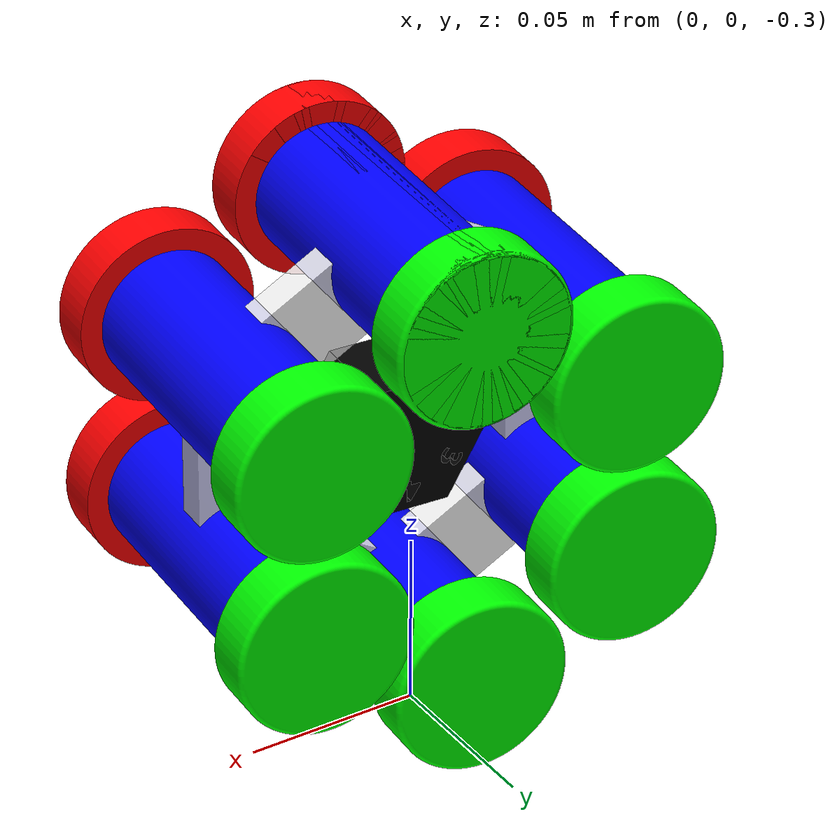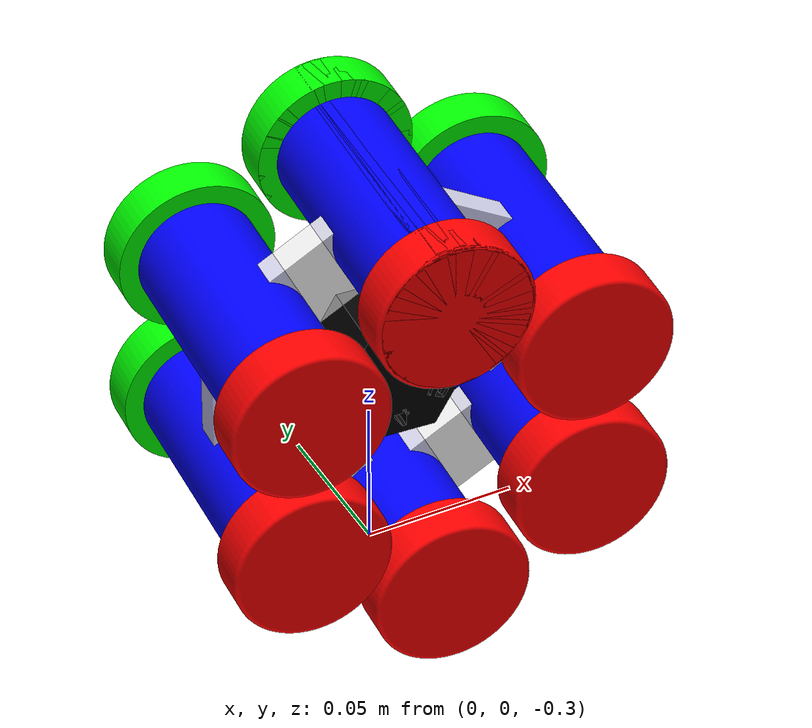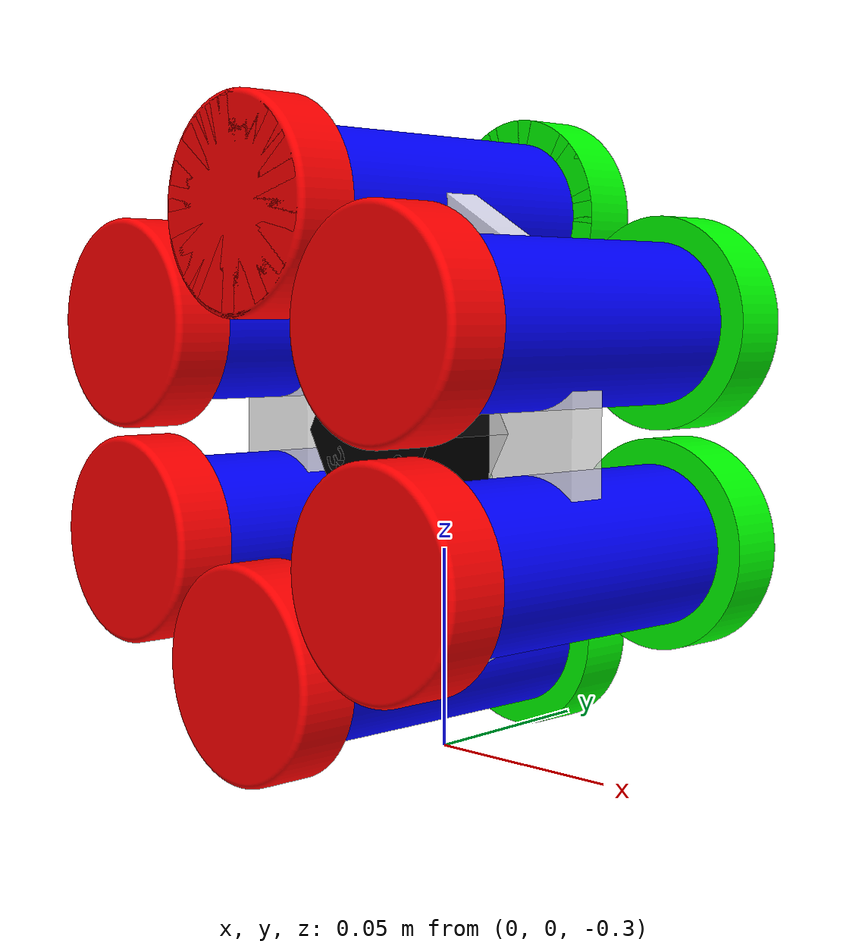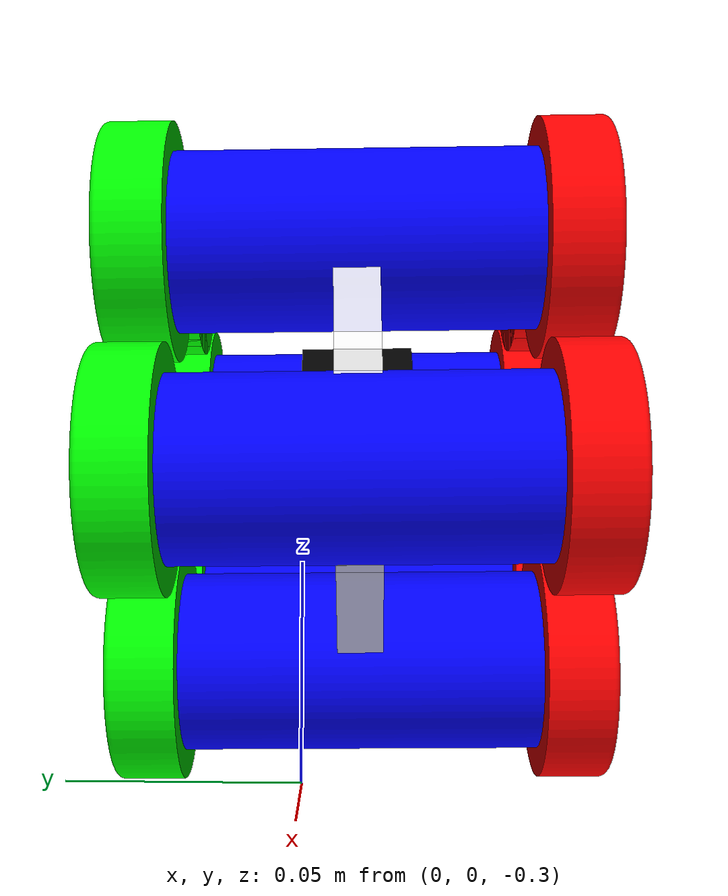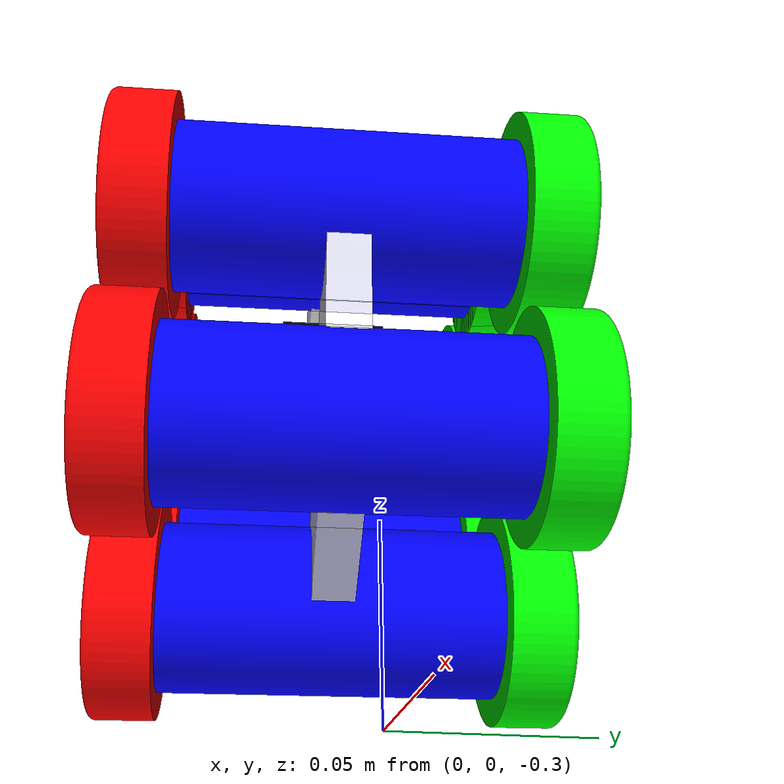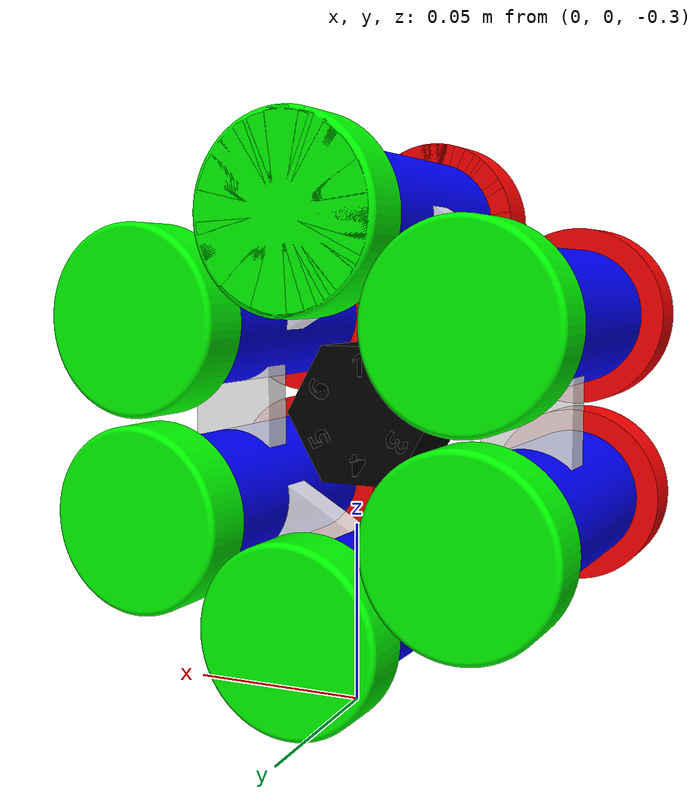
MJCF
<?xml version="1.0" ?>
<!-- Generated using onshape-to-robot -->
<!-- Onshape https://cad.onshape.com/documents/1211bac3cb73c606e0df4462/w/b4b802ed1facbeb12b844dd4/e/452889f0b3bd3a04c0a0f503 -->
<mujoco model="roller">
  <compiler angle="radian" meshdir="assets" autolimits="true"/>
  <default>
    <default class="roller">
      <joint frictionloss="0.1" armature="0.005"/>
      <position kp="50" dampratio="1"/>
      <default class="visual">
        <geom type="mesh" contype="0" conaffinity="0" group="2"/>
      </default>
      <default class="collision">
        <geom group="3"/>
      </default>
    </default>
  </default>
  <worldbody>
    <!-- Link control -->
    <body name="control" pos="0 0 -0.22" euler="0 0.0 1.5" childclass="roller">
      <freejoint name="control_freejoint"/>
      <inertial pos="-0.0127 0.0228081 0.0395434" mass="0.0211207" fullinertia="1.05373e-05 3.32284e-06 7.5338e-06 -4.41757e-22 2.23302e-22 3.6468e-06"/>
      <!-- Part control -->

      <site group="3" name="control" pos="0 0 0" quat="1 0 0 0"/>

      <geom type="mesh" class="visual" pos="-0.0127 -5.50107e-05 -5.66234e-05" quat="1 0 0 0" mesh="control" material="control_material"/>
      <geom type="mesh" class="collision" pos="-0.0127 -5.50107e-05 -5.66234e-05" quat="1 0 0 0" mesh="control" material="control_material"/>
      <!-- Part suspension_joint -->
      <geom type="mesh" class="visual" pos="-0.0127 -5.50107e-05 -5.66234e-05" quat="1 -0 1.11022e-16 -0" mesh="suspension_joint" material="suspension_joint_material"/>
      <geom type="mesh" class="collision" pos="-0.0127 -5.50107e-05 -5.66234e-05" quat="1 -0 1.11022e-16 -0" mesh="suspension_joint" material="suspension_joint_material"/>
      <!-- Link center -->
      <body name="center" pos="-0.0127 -5.50107e-05 0.0527434" quat="0.5 0.5 0.5 0.5">
        <!-- Joint from control to center -->
        <!-- Joint is "fixed", skipping it -->
        <inertial pos="-3.54563e-19 6.93889e-18 1.80493e-18" mass="0.10645" fullinertia="6.13698e-05 6.13698e-05 1.97233e-05 4.08805e-19 2.94105e-19 -2.19536e-19"/>
        <!-- Part center -->
        <geom type="mesh" class="visual" pos="-3.52976e-16 -0.0528 1.9082e-16" quat="0.5 -0.5 -0.5 -0.5" mesh="center" material="center_material"/>
        <geom type="mesh" class="collision" pos="-3.52976e-16 -0.0528 1.9082e-16" quat="0.5 -0.5 -0.5 -0.5" mesh="center" material="center_material"/>
        <!-- Frame roller1 -->
        <site group="3" name="roller1" pos="9.08019e-19 0 1.73472e-18" quat="0.5 -0.5 -0.5 -0.5"/>
        <!-- Link l_wheel -->
        <body name="l_wheel" pos="-5.70412e-16 6.93889e-18 -0.0381" quat="0.707107 5.26922e-15 5.88418e-15 0.707107">
          <!-- Joint from center to l_wheel -->
          <joint axis="0 0 1" name="L1" type="hinge"/>
          <inertial pos="-3.31489e-19 0 -0.00723207" mass="0.0823695" fullinertia="1.46894e-05 1.46894e-05 2.65054e-05 0 0 4.01044e-38"/>
          <!-- Part l_wheel -->
          <geom type="mesh" class="visual" pos="0 -0.0528 0.0381" quat="0.5 -0.5 -0.5 -0.5" mesh="l_wheel" material="l_wheel_material"/>
          <geom type="mesh" class="collision" pos="0 -0.0528 0.0381" quat="0.5 -0.5 -0.5 -0.5" mesh="l_wheel" material="l_wheel_material"/>
        </body>
        <!-- Link r_wheel -->
        <body name="r_wheel" pos="5.68075e-16 0 0.0381" quat="1 -9.55844e-16 3.83027e-15 -1.72085e-15">
          <!-- Joint from center to r_wheel -->
          <joint axis="0 0 1" name="R1" type="hinge"/>
          <inertial pos="0 -1.38778e-17 0.00723207" mass="0.0823695" fullinertia="1.46894e-05 1.46894e-05 2.65054e-05 -9.56684e-20 -2.19041e-19 5.24686e-20"/>
          <!-- Part r_wheel -->
          <geom type="mesh" class="visual" pos="0.0358672 -0.0387477 -0.0381" quat="0.64794 -0.28315 -0.64794 -0.28315" mesh="r_wheel" material="r_wheel_material"/>
          <geom type="mesh" class="collision" pos="0.0358672 -0.0387477 -0.0381" quat="0.64794 -0.28315 -0.64794 -0.28315" mesh="r_wheel" material="r_wheel_material"/>
        </body>
      </body>
      <!-- Link center_2 -->
      <body name="center_2" pos="-0.0127 0.0456711 0.0263434" quat="0.5 0.5 0.5 0.5">
        <!-- Joint from control to center_2 -->
        <!-- Joint is "fixed", skipping it -->
        <inertial pos="6.93889e-18 6.93889e-18 3.84346e-34" mass="0.10645" fullinertia="6.13698e-05 6.13698e-05 1.97233e-05 0 1.4377e-37 2.23364e-37"/>
        <!-- Part center_2 -->
        <geom type="mesh" class="visual" pos="-0.0457261 -0.0264 0" quat="0.183013 -0.683013 -0.183013 -0.683013" mesh="center" material="center_material"/>
        <geom type="mesh" class="collision" pos="-0.0457261 -0.0264 0" quat="0.183013 -0.683013 -0.183013 -0.683013" mesh="center" material="center_material"/>
        <!-- Frame roller6 -->
        <site group="3" name="roller6" pos="0 -3.46945e-18 0" quat="0.183013 -0.683013 -0.183013 -0.683013"/>
        <!-- Link l_wheel_2 -->
        <body name="l_wheel_2" pos="6.93889e-18 1.04083e-17 -0.0381" quat="0.707107 0 1.11022e-16 0.707107">
          <!-- Joint from center_2 to l_wheel_2 -->
          <joint axis="0 0 1" name="L2" type="hinge"/>
          <inertial pos="-3.31489e-19 0 -0.00723207" mass="0.0823695" fullinertia="1.46894e-05 1.46894e-05 2.65054e-05 0 0 1.23917e-53"/>
          <!-- Part l_wheel_2 -->
          <geom type="mesh" class="visual" pos="0 -0.0528 0.0381" quat="0.5 -0.5 -0.5 -0.5" mesh="l_wheel" material="l_wheel_material"/>
          <geom type="mesh" class="collision" pos="0 -0.0528 0.0381" quat="0.5 -0.5 -0.5 -0.5" mesh="l_wheel" material="l_wheel_material"/>
        </body>
        <!-- Link r_wheel_2 -->
        <body name="r_wheel_2" pos="-6.93889e-18 0 0.0381" quat="0.866025 0 -2.22045e-16 -0.5">
          <!-- Joint from center_2 to r_wheel_2 -->
          <joint axis="0 0 1" name="R2" type="hinge"/>
          <inertial pos="1.14925e-17 1.38778e-17 0.00723207" mass="0.0823695" fullinertia="1.46894e-05 1.46894e-05 2.65054e-05 -1.36688e-22 -2.64828e-22 9.8835e-22"/>
          <!-- Part r_wheel_2 -->
          <geom type="mesh" class="visual" pos="-0.00158328 0.0527763 -0.0381" quat="0.492446 0.507441 -0.492446 0.507441" mesh="r_wheel" material="r_wheel_material"/>
          <geom type="mesh" class="collision" pos="-0.00158328 0.0527763 -0.0381" quat="0.492446 0.507441 -0.492446 0.507441" mesh="r_wheel" material="r_wheel_material"/>
        </body>
        <!-- Link suspension_joint -->
        <body name="suspension_joint" pos="2.08167e-17 -6.93889e-18 0" quat="3.78603e-33 0.866025 -0.5 -3.66721e-34">
          <!-- Joint from center_2 to suspension_joint -->
          <!-- Joint is "fixed", skipping it -->
          <inertial pos="0.0228631 0.0132 2.99947e-18" mass="0.0211207" fullinertia="3.32284e-06 7.5338e-06 1.05373e-05 -3.6468e-06 -4.2143e-38 4.78606e-38"/>
          <!-- Part suspension_joint_2 -->
          <geom type="mesh" class="visual" pos="5.91907e-18 0.0528 3.46945e-18" quat="0.5 0.5 0.5 -0.5" mesh="suspension_joint" material="suspension_joint_material"/>
          <geom type="mesh" class="collision" pos="5.91907e-18 0.0528 3.46945e-18" quat="0.5 0.5 0.5 -0.5" mesh="suspension_joint" material="suspension_joint_material"/>
          <!-- Link center_3 -->
          <body name="center_3" pos="0.0457261 0.0264 0" quat="0.866025 0 9.22709e-17 0.5">
            <!-- Joint from suspension_joint to center_3 -->
            <!-- Joint is "fixed", skipping it -->
            <inertial pos="-4.01038e-18 -6.93889e-18 2.60324e-33" mass="0.10645" fullinertia="6.13698e-05 6.13698e-05 1.97233e-05 -1.82565e-21 -7.16404e-36 -3.02577e-36"/>
            <!-- Part center_3 -->
            <geom type="mesh" class="visual" pos="-5.19062e-18 0.0528 0" quat="0.5 0.5 0.5 -0.5" mesh="center" material="center_material"/>
            <geom type="mesh" class="collision" pos="-5.19062e-18 0.0528 0" quat="0.5 0.5 0.5 -0.5" mesh="center" material="center_material"/>
            <!-- Frame roller5 -->
            <site group="3" name="roller5" pos="1.3417e-18 2.08167e-17 1.73472e-18" quat="0.5 0.5 0.5 -0.5"/>
            <!-- Link l_wheel_3 -->
            <body name="l_wheel_3" pos="6.23958e-17 -1.38778e-17 0.0381" quat="4.7547e-17 -0.258819 -0.965926 7.58201e-17">
              <!-- Joint from center_3 to l_wheel_3 -->
              <joint axis="0 0 1" name="L3" type="hinge"/>
              <inertial pos="3.13796e-18 6.93889e-18 -0.00723207" mass="0.0823695" fullinertia="1.46894e-05 1.46894e-05 2.65054e-05 0 0 -1.57949e-53"/>
              <!-- Part l_wheel_3 -->
              <geom type="mesh" class="visual" pos="3.46945e-18 -0.0528 0.0381" quat="0.5 -0.5 -0.5 -0.5" mesh="l_wheel" material="l_wheel_material"/>
              <geom type="mesh" class="collision" pos="3.46945e-18 -0.0528 0.0381" quat="0.5 -0.5 -0.5 -0.5" mesh="l_wheel" material="l_wheel_material"/>
            </body>
            <!-- Link r_wheel_3 -->
            <body name="r_wheel_3" pos="-4.01155e-18 -6.93889e-18 -0.0381" quat="0 1 0 0">
              <!-- Joint from center_3 to r_wheel_3 -->
              <joint axis="0 0 1" name="R3" type="hinge"/>
              <inertial pos="-2.77556e-17 -4.16334e-17 0.00723207" mass="0.0823695" fullinertia="1.46894e-05 1.46894e-05 2.65054e-05 1.15046e-21 -5.64395e-20 -3.17499e-20"/>
              <!-- Part r_wheel_3 -->
              <geom type="mesh" class="visual" pos="-0.0264 0.0457261 -0.0381" quat="0.353553 0.612372 -0.353553 0.612372" mesh="r_wheel" material="r_wheel_material"/>
              <geom type="mesh" class="collision" pos="-0.0264 0.0457261 -0.0381" quat="0.353553 0.612372 -0.353553 0.612372" mesh="r_wheel" material="r_wheel_material"/>
            </body>
            <!-- Link suspension_joint_2 -->
            <body name="suspension_joint_2" pos="-6.51877e-18 -6.93889e-18 1.73472e-18" quat="1 -3.9318e-16 5.55112e-16 -2.77556e-16">
              <!-- Joint from center_3 to suspension_joint_2 -->
              <!-- Joint is "fixed", skipping it -->
              <inertial pos="0.0228631 0.0132 2.99947e-18" mass="0.0211207" fullinertia="3.32284e-06 7.5338e-06 1.05373e-05 -3.6468e-06 1.40876e-36 -4.09366e-36"/>
              <!-- Part suspension_joint_3 -->
              <geom type="mesh" class="visual" pos="-1.16552e-18 0.0528 3.46945e-18" quat="0.5 0.5 0.5 -0.5" mesh="suspension_joint" material="suspension_joint_material"/>
              <geom type="mesh" class="collision" pos="-1.16552e-18 0.0528 3.46945e-18" quat="0.5 0.5 0.5 -0.5" mesh="suspension_joint" material="suspension_joint_material"/>
              <!-- Link center_4 -->
              <body name="center_4" pos="0.0457261 0.0264 0" quat="0.866025 0 1.2819e-30 0.5">
                <!-- Joint from suspension_joint_2 to center_4 -->
                <!-- Joint is "fixed", skipping it -->
                <inertial pos="-2.93913e-19 0 2.27951e-33" mass="0.10645" fullinertia="6.13698e-05 6.13698e-05 1.97233e-05 9.37238e-50 1.28857e-36 -1.79799e-36"/>
                <!-- Part center_4 -->
                <geom type="mesh" class="visual" pos="1.73472e-18 0.0528 0" quat="0.5 0.5 0.5 -0.5" mesh="center" material="center_material"/>
                <geom type="mesh" class="collision" pos="1.73472e-18 0.0528 0" quat="0.5 0.5 0.5 -0.5" mesh="center" material="center_material"/>
                <!-- Frame roller4 -->
                <site group="3" name="roller4" pos="2.8955e-17 6.93889e-17 3.46945e-18" quat="0.5 0.5 0.5 -0.5"/>
                <!-- Link l_wheel_4 -->
                <body name="l_wheel_4" pos="6.2965e-17 8.32667e-17 0.0381" quat="7.08568e-16 0.707107 0.707107 2.05588e-16">
                  <!-- Joint from center_4 to l_wheel_4 -->
                  <joint axis="0 0 1" name="L4" type="hinge"/>
                  <inertial pos="6.6074e-18 0 -0.00723207" mass="0.0823695" fullinertia="1.46894e-05 1.46894e-05 2.65054e-05 0 0 1.23917e-53"/>
                  <!-- Part l_wheel_4 -->
                  <geom type="mesh" class="visual" pos="6.93889e-18 -0.0528 0.0381" quat="0.5 -0.5 -0.5 -0.5" mesh="l_wheel" material="l_wheel_material"/>
                  <geom type="mesh" class="collision" pos="6.93889e-18 -0.0528 0.0381" quat="0.5 -0.5 -0.5 -0.5" mesh="l_wheel" material="l_wheel_material"/>
                </body>
                <!-- Link r_wheel_4 -->
                <body name="r_wheel_4" pos="6.77626e-21 0 -0.0381" quat="0 1 0 0">
                  <!-- Joint from center_4 to r_wheel_4 -->
                  <joint axis="0 0 1" name="R4" type="hinge"/>
                  <inertial pos="4.51028e-17 -9.02056e-17 0.00723207" mass="0.0823695" fullinertia="1.46894e-05 1.46894e-05 2.65054e-05 3.02467e-22 1.52759e-20 8.40499e-21"/>
                  <!-- Part r_wheel_4 -->
                  <geom type="mesh" class="visual" pos="0.005362 -0.052527 -0.0381" quat="0.524774 -0.473932 -0.524774 -0.473932" mesh="r_wheel" material="r_wheel_material"/>
                  <geom type="mesh" class="collision" pos="0.005362 -0.052527 -0.0381" quat="0.524774 -0.473932 -0.524774 -0.473932" mesh="r_wheel" material="r_wheel_material"/>
                </body>
                <!-- Link suspension_joint_3 -->
                <body name="suspension_joint_3" pos="3.46945e-18 -2.56739e-16 -1.73472e-18" quat="1 -0 1.38317e-16 -2.52077e-18">
                  <!-- Joint from center_4 to suspension_joint_3 -->
                  <!-- Joint is "fixed", skipping it -->
                  <inertial pos="0.0228631 0.0132 2.99947e-18" mass="0.0211207" fullinertia="3.32284e-06 7.5338e-06 1.05373e-05 -3.6468e-06 8.36971e-37 -6.69683e-38"/>
                  <!-- Part suspension_joint_4 -->
                  <geom type="mesh" class="visual" pos="1.73472e-18 0.0528 3.46945e-18" quat="0.5 0.5 0.5 -0.5" mesh="suspension_joint" material="suspension_joint_material"/>
                  <geom type="mesh" class="collision" pos="1.73472e-18 0.0528 3.46945e-18" quat="0.5 0.5 0.5 -0.5" mesh="suspension_joint" material="suspension_joint_material"/>
                  <!-- Link center_5 -->
                  <body name="center_5" pos="0.0457261 0.0264 -1.73472e-18" quat="0.866025 -0 2.08817e-16 0.5">
                    <!-- Joint from suspension_joint_3 to center_5 -->
                    <!-- Joint is "fixed", skipping it -->
                    <inertial pos="-8.25437e-18 0 8.97981e-33" mass="0.10645" fullinertia="6.13698e-05 6.13698e-05 1.97233e-05 -1.58106e-21 5.2312e-36 -1.1479e-35"/>
                    <!-- Part center_5 -->
                    <geom type="mesh" class="visual" pos="-5.55315e-18 0.0528 0" quat="0.5 0.5 0.5 -0.5" mesh="center" material="center_material"/>
                    <geom type="mesh" class="collision" pos="-5.55315e-18 0.0528 0" quat="0.5 0.5 0.5 -0.5" mesh="center" material="center_material"/>
                    <!-- Frame roller3 -->
                    <site group="3" name="roller3" pos="2.88303e-16 1.59595e-16 5.20417e-18" quat="0.5 0.5 0.5 -0.5"/>
                    <!-- Link l_wheel_5 -->
                    <body name="l_wheel_5" pos="3.38271e-16 1.11022e-16 0.0381" quat="7.85046e-16 -0.965926 -0.258819 4.71028e-16">
                      <!-- Joint from center_5 to l_wheel_5 -->
                      <joint axis="0 0 1" name="L5" type="hinge"/>
                      <inertial pos="3.13796e-18 -6.93889e-18 -0.00723207" mass="0.0823695" fullinertia="1.46894e-05 1.46894e-05 2.65054e-05 6.39259e-38 5.61758e-37 4.34316e-37"/>
                      <!-- Part l_wheel_5 -->
                      <geom type="mesh" class="visual" pos="3.46945e-18 -0.0528 0.0381" quat="0.5 -0.5 -0.5 -0.5" mesh="l_wheel" material="l_wheel_material"/>
                      <geom type="mesh" class="collision" pos="3.46945e-18 -0.0528 0.0381" quat="0.5 -0.5 -0.5 -0.5" mesh="l_wheel" material="l_wheel_material"/>
                    </body>
                    <!-- Link r_wheel_5 -->
                    <body name="r_wheel_5" pos="-7.32853e-18 0 -0.0381" quat="0 1 0 0">
                      <!-- Joint from center_5 to r_wheel_5 -->
                      <joint axis="0 0 1" name="R5" type="hinge"/>
                      <inertial pos="2.18575e-16 -2.28983e-16 0.00723207" mass="0.0823695" fullinertia="1.46894e-05 1.46894e-05 2.65054e-05 2.03659e-21 -1.55537e-20 -1.50391e-20"/>
                      <!-- Part r_wheel_5 -->
                      <geom type="mesh" class="visual" pos="-0.0264 -0.0457261 -0.0381" quat="0.353553 -0.612372 -0.353553 -0.612372" mesh="r_wheel" material="r_wheel_material"/>
                      <geom type="mesh" class="collision" pos="-0.0264 -0.0457261 -0.0381" quat="0.353553 -0.612372 -0.353553 -0.612372" mesh="r_wheel" material="r_wheel_material"/>
                    </body>
                    <!-- Link suspension_joint_4 -->
                    <body name="suspension_joint_4" pos="-4.59261e-17 3.46945e-17 9.71445e-17" quat="1 0 -1.69629e-17 -1.23049e-18">
                      <!-- Joint from center_5 to suspension_joint_4 -->
                      <!-- Joint is "fixed", skipping it -->
                      <inertial pos="0.0228631 0.0132 2.99947e-18" mass="0.0211207" fullinertia="3.32284e-06 7.5338e-06 1.05373e-05 -3.6468e-06 -3.43848e-36 -6.59492e-38"/>
                      <!-- Part suspension_joint_5 -->
                      <geom type="mesh" class="visual" pos="3.13402e-18 0.0528 3.46945e-18" quat="0.5 0.5 0.5 -0.5" mesh="suspension_joint" material="suspension_joint_material"/>
                      <geom type="mesh" class="collision" pos="3.13402e-18 0.0528 3.46945e-18" quat="0.5 0.5 0.5 -0.5" mesh="suspension_joint" material="suspension_joint_material"/>
                      <!-- Link center_6 -->
                      <body name="center_6" pos="0.0457261 0.0264 1.73472e-18" quat="0 1 0 0">
                        <!-- Joint from suspension_joint_4 to center_6 -->
                        <!-- Joint is "fixed", skipping it -->
                        <inertial pos="3.40006e-16 -1.31839e-16 9.18551e-17" mass="0.10645" fullinertia="6.13698e-05 6.13698e-05 1.97233e-05 4.04692e-20 5.92785e-20 2.09332e-19"/>
                        <!-- Part center_6 -->
                        <geom type="mesh" class="visual" pos="-0.0457261 -0.0264 -3.1225e-17" quat="0.183013 -0.683013 -0.183013 -0.683013" mesh="center" material="center_material"/>
                        <geom type="mesh" class="collision" pos="-0.0457261 -0.0264 -3.1225e-17" quat="0.183013 -0.683013 -0.183013 -0.683013" mesh="center" material="center_material"/>
                        <!-- Frame roller2 -->
                        <site group="3" name="roller2" pos="3.33067e-16 -1.31839e-16 9.19403e-17" quat="0.183013 -0.683013 -0.183013 -0.683013"/>
                        <!-- Link l_wheel_6 -->
                        <body name="l_wheel_6" pos="2.98372e-16 -1.38778e-16 -0.0381" quat="0.965926 8.88178e-16 4.44089e-16 -0.258819">
                          <!-- Joint from center_6 to l_wheel_6 -->
                          <joint axis="0 0 1" name="L6" type="hinge"/>
                          <inertial pos="3.13796e-18 0 -0.00723207" mass="0.0823695" fullinertia="1.46894e-05 1.46894e-05 2.65054e-05 0 0 1.01553e-36"/>
                          <!-- Part l_wheel_6 -->
                          <geom type="mesh" class="visual" pos="3.46945e-18 -0.0528 0.0381" quat="0.5 -0.5 -0.5 -0.5" mesh="l_wheel" material="l_wheel_material"/>
                          <geom type="mesh" class="collision" pos="3.46945e-18 -0.0528 0.0381" quat="0.5 -0.5 -0.5 -0.5" mesh="l_wheel" material="l_wheel_material"/>
                        </body>
                        <!-- Link r_wheel_6 -->
                        <body name="r_wheel_6" pos="3.60822e-16 -1.31839e-16 0.0381" quat="0.866025 6.59807e-16 2.22045e-16 -0.5">
                          <!-- Joint from center_6 to r_wheel_6 -->
                          <joint axis="0 0 1" name="R6" type="hinge"/>
                          <inertial pos="3.46945e-18 -2.08167e-17 0.00723207" mass="0.0823695" fullinertia="1.46894e-05 1.46894e-05 2.65054e-05 -2.41107e-21 -5.09248e-21 -3.41093e-21"/>
                          <!-- Part r_wheel_6 -->
                          <geom type="mesh" class="visual" pos="0.0264 -0.0457261 -0.0381" quat="0.612372 -0.353553 -0.612372 -0.353553" mesh="r_wheel" material="r_wheel_material"/>
                          <geom type="mesh" class="collision" pos="0.0264 -0.0457261 -0.0381" quat="0.612372 -0.353553 -0.612372 -0.353553" mesh="r_wheel" material="r_wheel_material"/>
                        </body>
                        <!-- Link suspension_joint_5 -->
                        <body name="suspension_joint_5" pos="3.33067e-16 -1.249e-16 8.84709e-17" quat="3.99679e-15 -0.866025 0.5 2.25498e-15">
                          <!-- Joint from center_6 to suspension_joint_5 -->
                          <!-- Joint is "fixed", skipping it -->
                          <inertial pos="0.0228631 0.0132 1.26475e-18" mass="0.0211207" fullinertia="3.32284e-06 7.5338e-06 1.05373e-05 -3.6468e-06 8.97459e-37 3.65085e-35"/>
                          <!-- Part suspension_joint_6 -->
                          <geom type="mesh" class="visual" pos="1.0842e-19 0.0528 1.73472e-18" quat="0.5 0.5 0.5 -0.5" mesh="suspension_joint" material="suspension_joint_material"/>
                          <geom type="mesh" class="collision" pos="1.0842e-19 0.0528 1.73472e-18" quat="0.5 0.5 0.5 -0.5" mesh="suspension_joint" material="suspension_joint_material"/>
                          <!-- Link center_7 -->
                          <body name="center_7" pos="0.0457261 0.0264 -3.52149e-16" quat="0.866025 9.93775e-16 1.66533e-15 0.5">
                            <!-- Joint from suspension_joint_5 to center_7 -->
                            <joint axis="0 0 1" name="j1a" type="hinge"/>
                            <inertial pos="-2.93913e-19 -6.93889e-18 -8.56513e-33" mass="0.10645" fullinertia="6.13698e-05 6.13698e-05 1.97233e-05 -6.20282e-35 3.28002e-36 9.95496e-36"/>
                            <!-- Part center_7 -->
                            <geom type="mesh" class="visual" pos="1.73472e-18 0.0528 0" quat="0.5 0.5 0.5 -0.5" mesh="center" material="center_material"/>
                            <geom type="mesh" class="collision" pos="1.73472e-18 0.0528 0" quat="0.5 0.5 0.5 -0.5" mesh="center" material="center_material"/>
                            <!-- Frame roller1 -->
                            <site group="3" name="roller1b" pos="9.69006e-19 0 0" quat="0.5 0.5 0.5 -0.5"/>
                            <!-- Link l_wheel_7 -->
                            <body name="l_wheel_7" pos="-2.22261e-18 -6.93889e-18 0.0381" quat="3.2756e-15 -0.707107 0.707107 -1.94285e-15">
                              <!-- Joint from center_7 to l_wheel_7 -->
                              <joint axis="0 0 1" name="L1b" type="hinge"/>
                              <inertial pos="-3.31489e-19 0 -0.00723207" mass="0.0823695" fullinertia="1.46894e-05 1.46894e-05 2.65054e-05 0 0 4.01044e-38"/>
                              <!-- Part l_wheel_7 -->
                              <geom type="mesh" class="visual" pos="0 -0.0528 0.0381" quat="0.5 -0.5 -0.5 -0.5" mesh="l_wheel" material="l_wheel_material"/>
                              <geom type="mesh" class="collision" pos="0 -0.0528 0.0381" quat="0.5 -0.5 -0.5 -0.5" mesh="l_wheel" material="l_wheel_material"/>
                            </body>
                            <!-- Link r_wheel_7 -->
                            <body name="r_wheel_7" pos="0 0 -0.0381" quat="0 1 0 0">
                              <!-- Joint from center_7 to r_wheel_7 -->
                              <joint axis="0 0 1" name="R1b" type="hinge"/>
                              <inertial pos="0 -1.38778e-17 0.00723207" mass="0.0823695" fullinertia="1.46894e-05 1.46894e-05 2.65054e-05 -9.56684e-20 -2.19041e-19 5.24686e-20"/>
                              <!-- Part r_wheel_7 -->
                              <geom type="mesh" class="visual" pos="0.0358672 -0.0387477 -0.0381" quat="0.64794 -0.28315 -0.64794 -0.28315" mesh="r_wheel" material="r_wheel_material"/>
                              <geom type="mesh" class="collision" pos="0.0358672 -0.0387477 -0.0381" quat="0.64794 -0.28315 -0.64794 -0.28315" mesh="r_wheel" material="r_wheel_material"/>
                            </body>
                          </body>
                        </body>
                      </body>
                    </body>
                  </body>
                </body>
              </body>
            </body>
          </body>
        </body>
      </body>
    </body>
  </worldbody>
  <asset>
    <mesh file="control.stl"/>
    <mesh file="l_wheel.stl"/>
    <mesh file="center.stl"/>
    <mesh file="suspension_joint.stl"/>
    <mesh file="r_wheel.stl"/>
    <material name="control_material" rgba="0 0 0 1"/>
    <material name="suspension_joint_material" rgba="1 1 1 0.898039"/>
    <material name="center_material" rgba="0 0 1 1"/>
    <material name="l_wheel_material" rgba="1 0 0 1"/>
    <material name="r_wheel_material" rgba="0 1 0 1"/>
  </asset>
     <actuator>
        <intvelocity class="roller" name="R1" joint="R1" kp="1" kv="1" actrange="-10000 10000" forcerange="-5 5"/>
        <intvelocity class="roller" name="L1" joint="L1" kp="1" kv="1" actrange="-10000 10000" forcerange="-5 5"/>
        <intvelocity class="roller" name="L2" joint="L2" kp="1" kv="1" actrange="-10000 10000" forcerange="-5 5"/>
        <intvelocity class="roller" name="R2" joint="R2" kp="1" kv="1" actrange="-10000 10000" forcerange="-5 5"/>
        <intvelocity class="roller" name="L3" joint="L3" kp="1" kv="1" actrange="-10000 10000" forcerange="-5 5"/>
        <intvelocity class="roller" name="R3" joint="R3" kp="1" kv="1" actrange="-10000 10000" forcerange="-5 5"/>
        <intvelocity class="roller" name="L4" joint="L4" kp="1" kv="1" actrange="-10000 10000" forcerange="-5 5"/>
        <intvelocity class="roller" name="R4" joint="R4" kp="1" kv="1" actrange="-10000 10000" forcerange="-5 5"/>
        <intvelocity class="roller" name="L5" joint="L5" kp="1" kv="1" actrange="-10000 10000" forcerange="-5 5"/>
        <intvelocity class="roller" name="R5" joint="R5" kp="1" kv="1" actrange="-10000 10000" forcerange="-5 5"/>
        <intvelocity class="roller" name="L6" joint="L6" kp="1" kv="1" actrange="-10000 10000" forcerange="-5 5"/>
        <intvelocity class="roller" name="R6" joint="R6" kp="1" kv="1" actrange="-10000 10000" forcerange="-5 5"/>
    </actuator>
  <sensor>
    <accelerometer name="roller1_accel" site="roller1"/>
    <accelerometer name="roller2_accel" site="roller2"/>
    <accelerometer name="roller3_accel" site="roller3"/>
    <accelerometer name="roller4_accel" site="roller4"/>
    <accelerometer name="roller5_accel" site="roller5"/>
    <accelerometer name="roller6_accel" site="roller6"/>

    <gyro name="roller1_gyro" site="roller1"/>
    <gyro name="roller2_gyro" site="roller2"/>
    <gyro name="roller3_gyro" site="roller3"/>
    <gyro name="roller4_gyro" site="roller4"/>
    <gyro name="roller5_gyro" site="roller5"/>
    <gyro name="roller6_gyro" site="roller6"/>

    <jointvel name="L1_w" joint="L1"/>
    <jointvel name="R1_w" joint="R1"/>
    <jointvel name="L2_w" joint="L2"/>
    <jointvel name="R2_w" joint="R2"/>
    <jointvel name="L3_w" joint="L3"/>
    <jointvel name="R3_w" joint="R3"/>
    <jointvel name="L4_w" joint="L4"/>
    <jointvel name="R4_w" joint="R4"/>
    <jointvel name="L5_w" joint="L5"/>
    <jointvel name="R5_w" joint="R5"/>
    <jointvel name="L6_w" joint="L6"/>
    <jointvel name="R6_w" joint="R6"/>

    <actuatorfrc name="L1_torque" actuator="L1"/>
    <actuatorfrc name="R1_torque" actuator="R1"/>
    <actuatorfrc name="L2_torque" actuator="L2"/>
    <actuatorfrc name="R2_torque" actuator="R2"/>
    <actuatorfrc name="L3_torque" actuator="L3"/>
    <actuatorfrc name="R3_torque" actuator="R3"/>
    <actuatorfrc name="L4_torque" actuator="L4"/>
    <actuatorfrc name="R4_torque" actuator="R4"/>
    <actuatorfrc name="L5_torque" actuator="L5"/>
    <actuatorfrc name="R5_torque" actuator="R5"/>
    <actuatorfrc name="L6_torque" actuator="L6"/>
    <actuatorfrc name="R6_torque" actuator="R6"/>

    <velocimeter name="total_vel" site="control"/>
    <gyro name="total_ang" site="control"/>
    <accelerometer name="total_grav" site="control"/>
  </sensor> </mujoco>
